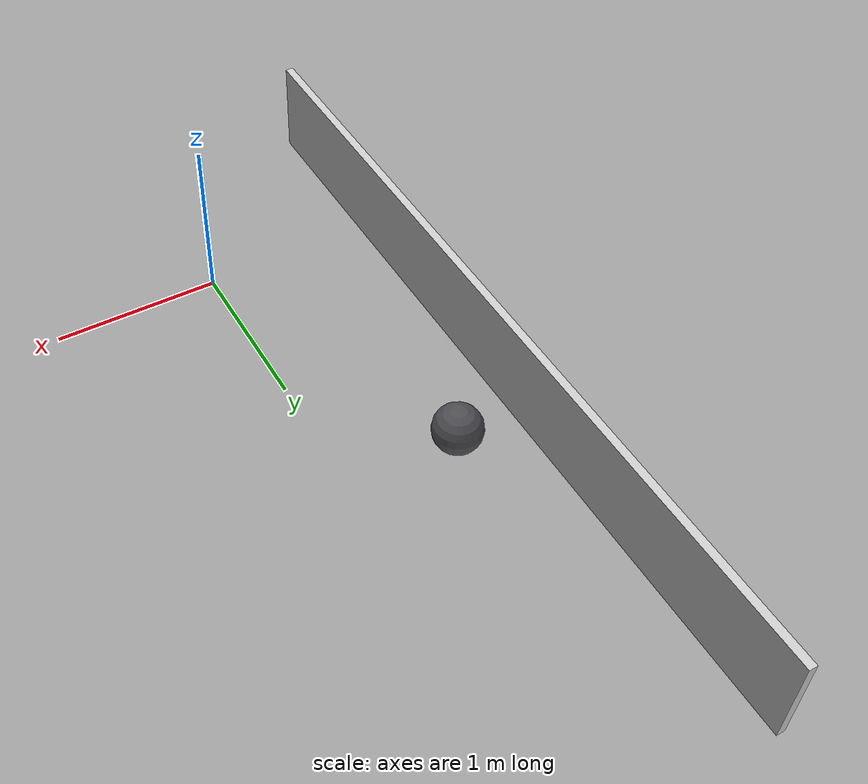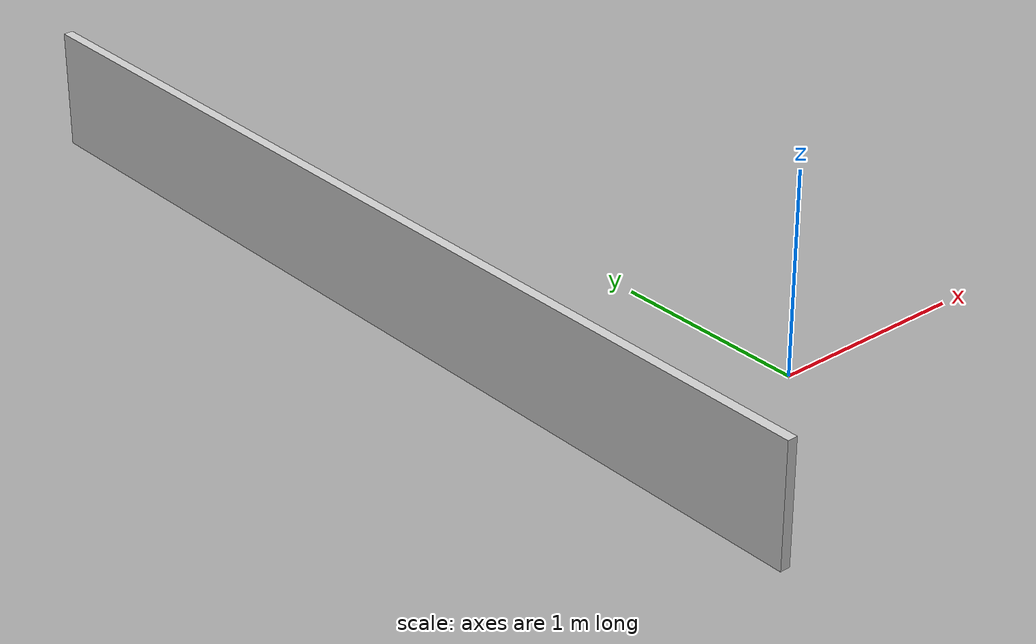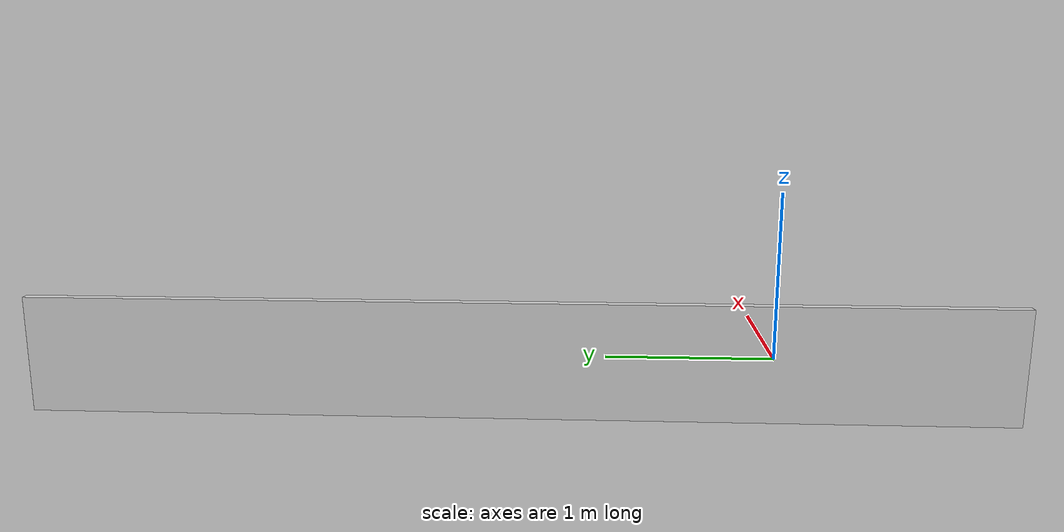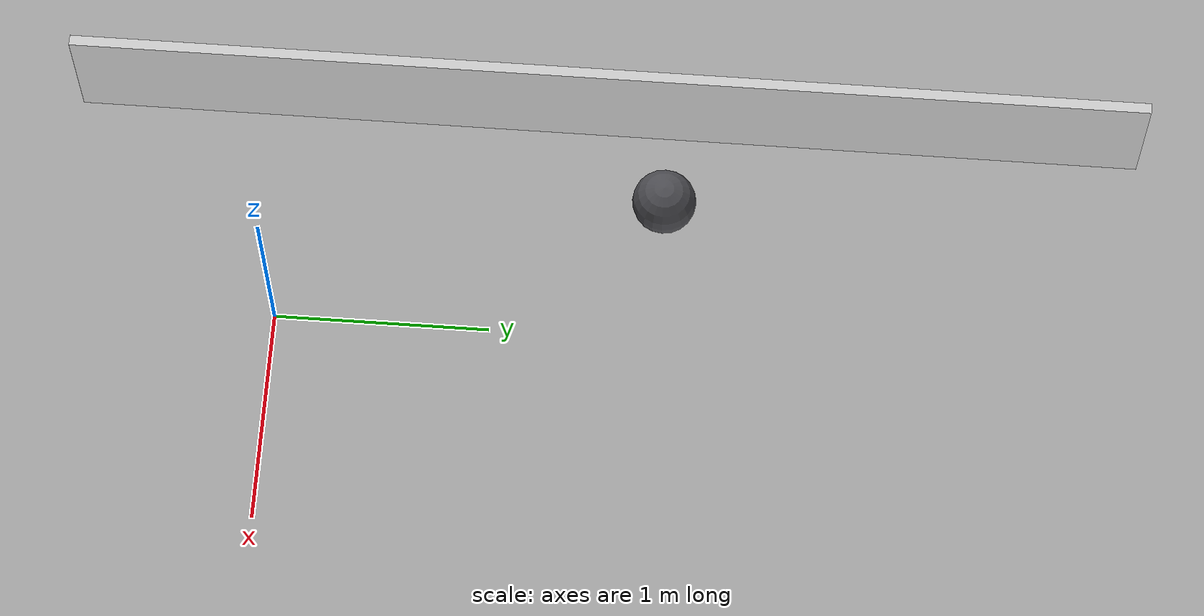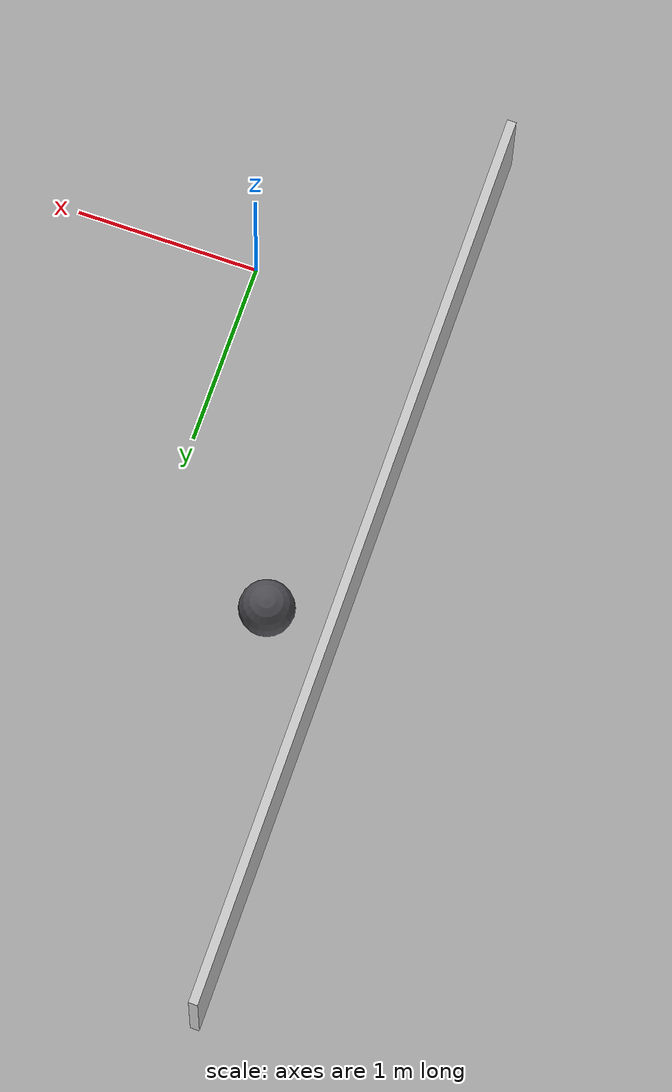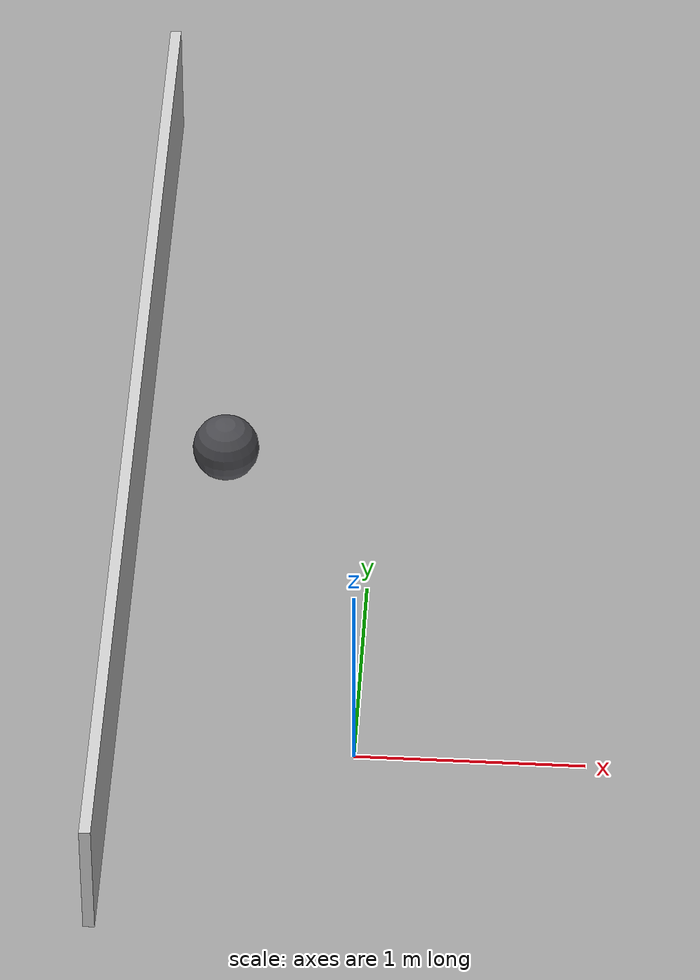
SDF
<sdf version="1.6">
 <world name="lunabotics_arena">
  <model name="wall_west">
   <static>true</static>
   <pose>-1.065 1.48 0.3 0 0 0</pose>
   <link name="link">
    <collision name="collision"><geometry><box><size>0.05 5.0 0.6</size></box></geometry></collision>
    <visual name="visual">
     <geometry><box><size>0.05 5.0 0.6</size></box></geometry>
     <material><ambient>0.8 0.8 0.8 1</ambient><diffuse>0.8 0.8 0.8 1</diffuse></material>
    </visual>
   </link>
  </model>
  <model name="rock_3">
   <static>true</static>
   <pose>-0.68 1.77 0.075 0 0 0</pose>
   <link name="link">
    <collision name="collision"><geometry><sphere><radius>0.15</radius></sphere></geometry></collision>
    <visual name="visual">
     <geometry><sphere><radius>0.15</radius></sphere></geometry>
     <material><ambient>0.3 0.3 0.32 1</ambient><diffuse>0.3 0.3 0.32 1</diffuse></material>
    </visual>
   </link>
  </model>
 </world>
</sdf>
